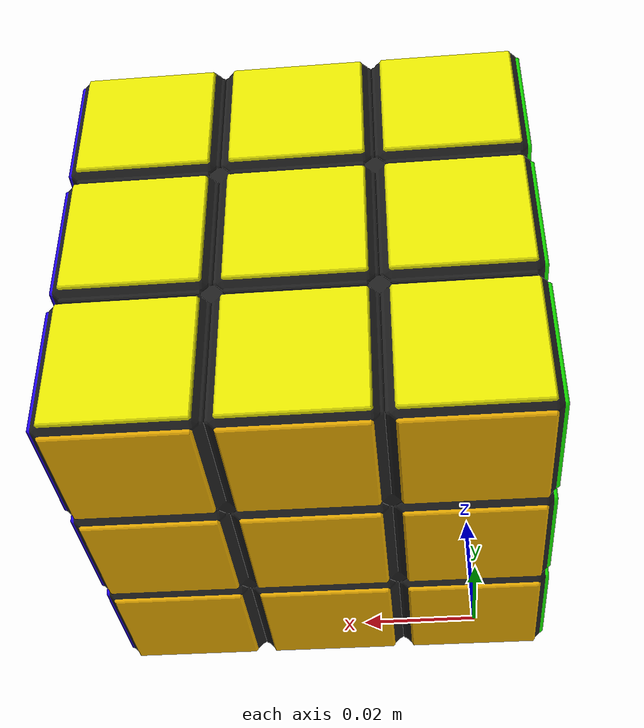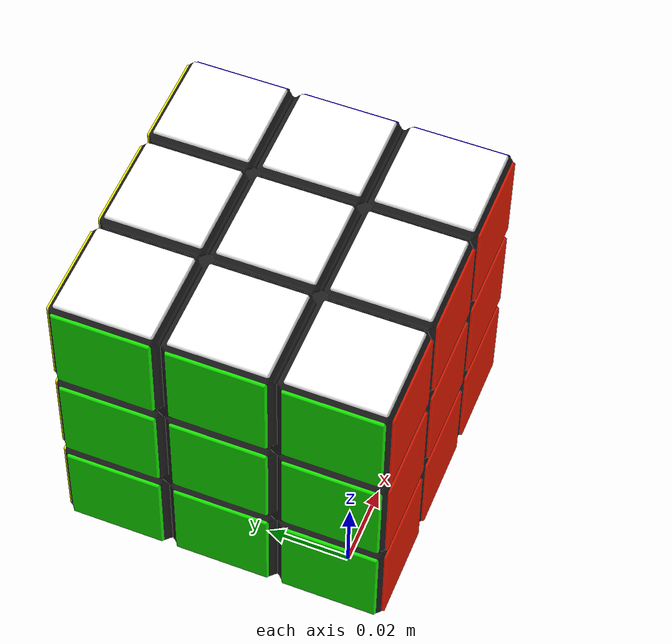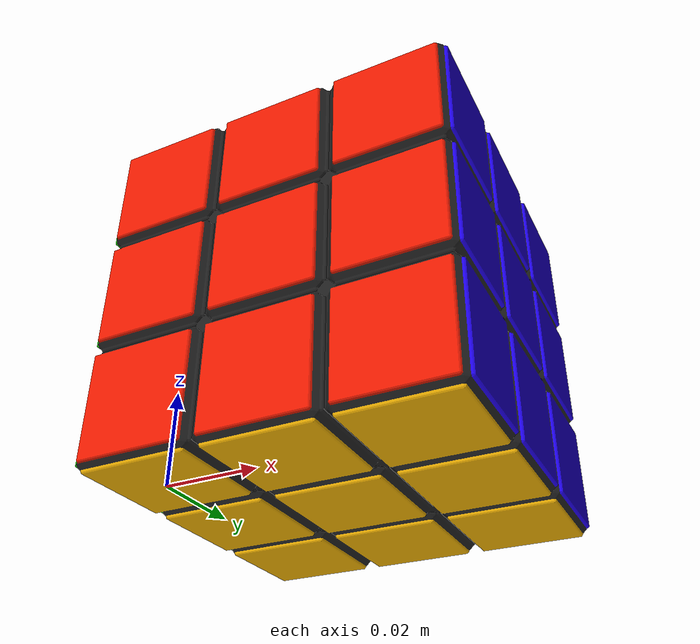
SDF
<?xml version="1.0" ?>
<sdf version="1.0">
  <model name="cube">
    <static>true</static>
    <link name="body">
      <visual name="visual">
        <geometry>
          <mesh><uri>model://cube/model.dae</uri></mesh>
        </geometry>
      </visual>
    </link>
  </model>
</sdf>
